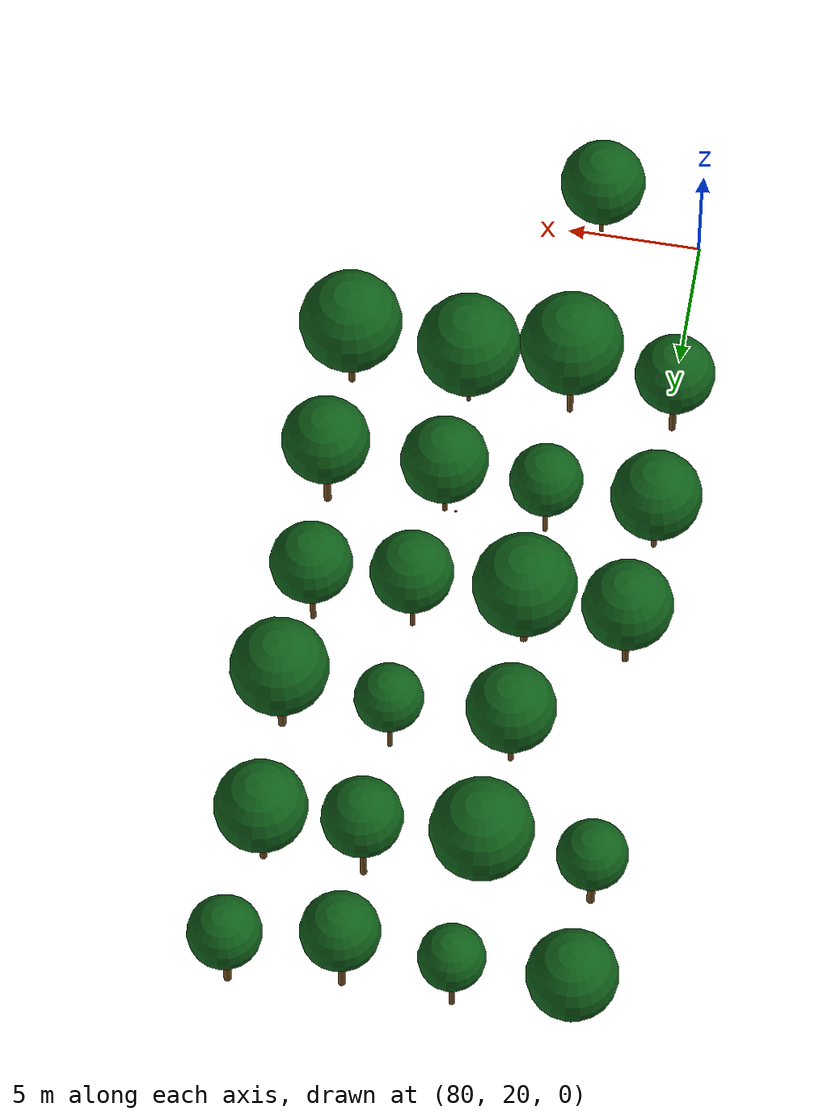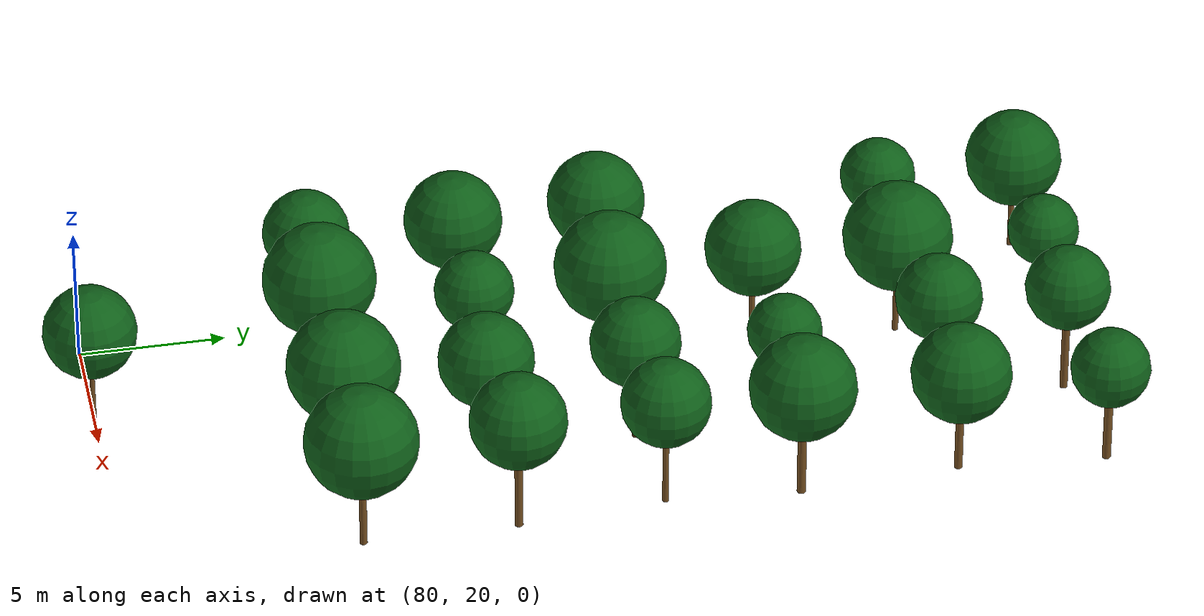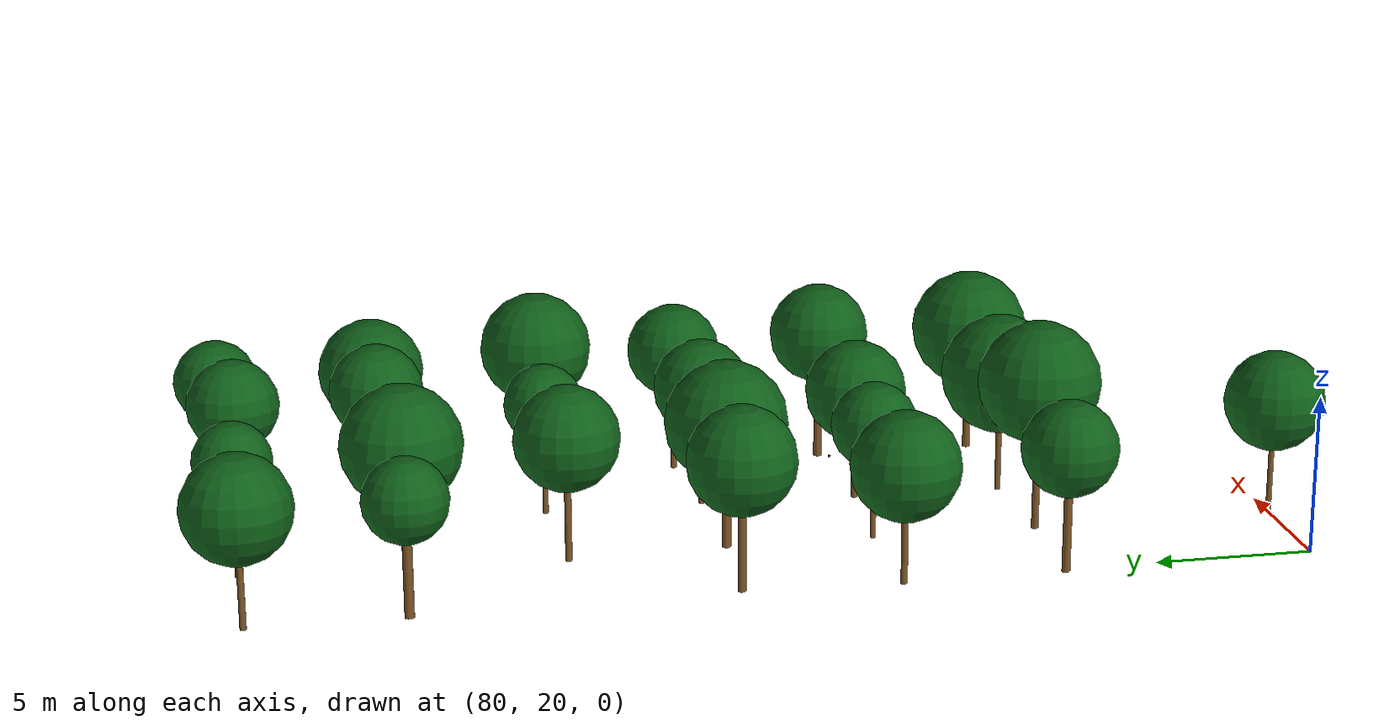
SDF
<sdf version="1.9">
 <world name="cheongsong_orchard">
  <model name="apple_tree_1463">
   <static>true</static>
   <pose>83.77 20.00 0 0 0 0</pose>
   <link name="link">
    <collision name="trunk_col">
     <pose>0 0 1.07 0 0 0</pose>
     <geometry><cylinder><radius>0.083</radius><length>2.14</length></cylinder></geometry>
    </collision>
    <visual name="trunk_vis">
     <pose>0 0 1.07 0 0 0</pose>
     <geometry><cylinder><radius>0.083</radius><length>2.14</length></cylinder></geometry>
     <material><ambient>0.35 0.22 0.08 1</ambient><diffuse>0.45 0.30 0.12 1</diffuse></material>
    </visual>
    <collision name="canopy_col">
     <pose>0 0 3.74 0 0 0</pose>
     <geometry><sphere><radius>1.60</radius></sphere></geometry>
    </collision>
    <visual name="canopy_vis">
     <pose>0 0 3.74 0 0 0</pose>
     <geometry><sphere><radius>1.60</radius></sphere></geometry>
     <material><ambient>0.04 0.28 0.06 1</ambient><diffuse>0.06 0.38 0.10 1</diffuse></material>
    </visual>
   </link>
  </model>
  <model name="apple_tree_1513">
   <static>true</static>
   <pose>79.83 27.93 0 0 0 0</pose>
   <link name="link">
    <collision name="trunk_col">
     <pose>0 0 1.22 0 0 0</pose>
     <geometry><cylinder><radius>0.128</radius><length>2.44</length></cylinder></geometry>
    </collision>
    <visual name="trunk_vis">
     <pose>0 0 1.22 0 0 0</pose>
     <geometry><cylinder><radius>0.128</radius><length>2.44</length></cylinder></geometry>
     <material><ambient>0.35 0.22 0.08 1</ambient><diffuse>0.45 0.30 0.12 1</diffuse></material>
    </visual>
    <collision name="canopy_col">
     <pose>0 0 3.93 0 0 0</pose>
     <geometry><sphere><radius>1.49</radius></sphere></geometry>
    </collision>
    <visual name="canopy_vis">
     <pose>0 0 3.93 0 0 0</pose>
     <geometry><sphere><radius>1.49</radius></sphere></geometry>
     <material><ambient>0.04 0.28 0.06 1</ambient><diffuse>0.06 0.38 0.10 1</diffuse></material>
    </visual>
   </link>
  </model>
  <model name="apple_tree_1514">
   <static>true</static>
   <pose>83.72 27.79 0 0 0 0</pose>
   <link name="link">
    <collision name="trunk_col">
     <pose>0 0 1.44 0 0 0</pose>
     <geometry><cylinder><radius>0.112</radius><length>2.89</length></cylinder></geometry>
    </collision>
    <visual name="trunk_vis">
     <pose>0 0 1.44 0 0 0</pose>
     <geometry><cylinder><radius>0.112</radius><length>2.89</length></cylinder></geometry>
     <material><ambient>0.35 0.22 0.08 1</ambient><diffuse>0.45 0.30 0.12 1</diffuse></material>
    </visual>
    <collision name="canopy_col">
     <pose>0 0 4.82 0 0 0</pose>
     <geometry><sphere><radius>1.93</radius></sphere></geometry>
    </collision>
    <visual name="canopy_vis">
     <pose>0 0 4.82 0 0 0</pose>
     <geometry><sphere><radius>1.93</radius></sphere></geometry>
     <material><ambient>0.04 0.28 0.06 1</ambient><diffuse>0.06 0.38 0.10 1</diffuse></material>
    </visual>
   </link>
  </model>
  <model name="apple_tree_1515">
   <static>true</static>
   <pose>87.53 27.97 0 0 0 0</pose>
   <link name="link">
    <collision name="trunk_col">
     <pose>0 0 1.02 0 0 0</pose>
     <geometry><cylinder><radius>0.090</radius><length>2.04</length></cylinder></geometry>
    </collision>
    <visual name="trunk_vis">
     <pose>0 0 1.02 0 0 0</pose>
     <geometry><cylinder><radius>0.090</radius><length>2.04</length></cylinder></geometry>
     <material><ambient>0.35 0.22 0.08 1</ambient><diffuse>0.45 0.30 0.12 1</diffuse></material>
    </visual>
    <collision name="canopy_col">
     <pose>0 0 3.96 0 0 0</pose>
     <geometry><sphere><radius>1.93</radius></sphere></geometry>
    </collision>
    <visual name="canopy_vis">
     <pose>0 0 3.96 0 0 0</pose>
     <geometry><sphere><radius>1.93</radius></sphere></geometry>
     <material><ambient>0.04 0.28 0.06 1</ambient><diffuse>0.06 0.38 0.10 1</diffuse></material>
    </visual>
   </link>
  </model>
  <model name="apple_tree_1516">
   <static>true</static>
   <pose>91.98 27.86 0 0 0 0</pose>
   <link name="link">
    <collision name="trunk_col">
     <pose>0 0 1.16 0 0 0</pose>
     <geometry><cylinder><radius>0.123</radius><length>2.31</length></cylinder></geometry>
    </collision>
    <visual name="trunk_vis">
     <pose>0 0 1.16 0 0 0</pose>
     <geometry><cylinder><radius>0.123</radius><length>2.31</length></cylinder></geometry>
     <material><ambient>0.35 0.22 0.08 1</ambient><diffuse>0.45 0.30 0.12 1</diffuse></material>
    </visual>
    <collision name="canopy_col">
     <pose>0 0 4.23 0 0 0</pose>
     <geometry><sphere><radius>1.92</radius></sphere></geometry>
    </collision>
    <visual name="canopy_vis">
     <pose>0 0 4.23 0 0 0</pose>
     <geometry><sphere><radius>1.92</radius></sphere></geometry>
     <material><ambient>0.04 0.28 0.06 1</ambient><diffuse>0.06 0.38 0.10 1</diffuse></material>
    </visual>
   </link>
  </model>
  <model name="apple_tree_1568">
   <static>true</static>
   <pose>79.74 33.01 0 0 0 0</pose>
   <link name="link">
    <collision name="trunk_col">
     <pose>0 0 1.02 0 0 0</pose>
     <geometry><cylinder><radius>0.100</radius><length>2.03</length></cylinder></geometry>
    </collision>
    <visual name="trunk_vis">
     <pose>0 0 1.02 0 0 0</pose>
     <geometry><cylinder><radius>0.100</radius><length>2.03</length></cylinder></geometry>
     <material><ambient>0.35 0.22 0.08 1</ambient><diffuse>0.45 0.30 0.12 1</diffuse></material>
    </visual>
    <collision name="canopy_col">
     <pose>0 0 3.72 0 0 0</pose>
     <geometry><sphere><radius>1.69</radius></sphere></geometry>
    </collision>
    <visual name="canopy_vis">
     <pose>0 0 3.72 0 0 0</pose>
     <geometry><sphere><radius>1.69</radius></sphere></geometry>
     <material><ambient>0.04 0.28 0.06 1</ambient><diffuse>0.06 0.38 0.10 1</diffuse></material>
    </visual>
   </link>
  </model>
  <model name="apple_tree_1569">
   <static>true</static>
   <pose>83.81 33.03 0 0 0 0</pose>
   <link name="link">
    <collision name="trunk_col">
     <pose>0 0 1.16 0 0 0</pose>
     <geometry><cylinder><radius>0.083</radius><length>2.33</length></cylinder></geometry>
    </collision>
    <visual name="trunk_vis">
     <pose>0 0 1.16 0 0 0</pose>
     <geometry><cylinder><radius>0.083</radius><length>2.33</length></cylinder></geometry>
     <material><ambient>0.35 0.22 0.08 1</ambient><diffuse>0.45 0.30 0.12 1</diffuse></material>
    </visual>
    <collision name="canopy_col">
     <pose>0 0 3.69 0 0 0</pose>
     <geometry><sphere><radius>1.36</radius></sphere></geometry>
    </collision>
    <visual name="canopy_vis">
     <pose>0 0 3.69 0 0 0</pose>
     <geometry><sphere><radius>1.36</radius></sphere></geometry>
     <material><ambient>0.04 0.28 0.06 1</ambient><diffuse>0.06 0.38 0.10 1</diffuse></material>
    </visual>
   </link>
  </model>
  <model name="apple_tree_1570">
   <static>true</static>
   <pose>87.62 32.77 0 0 0 0</pose>
   <link name="link">
    <collision name="trunk_col">
     <pose>0 0 1.00 0 0 0</pose>
     <geometry><cylinder><radius>0.101</radius><length>2.00</length></cylinder></geometry>
    </collision>
    <visual name="trunk_vis">
     <pose>0 0 1.00 0 0 0</pose>
     <geometry><cylinder><radius>0.101</radius><length>2.00</length></cylinder></geometry>
     <material><ambient>0.35 0.22 0.08 1</ambient><diffuse>0.45 0.30 0.12 1</diffuse></material>
    </visual>
    <collision name="canopy_col">
     <pose>0 0 3.63 0 0 0</pose>
     <geometry><sphere><radius>1.63</radius></sphere></geometry>
    </collision>
    <visual name="canopy_vis">
     <pose>0 0 3.63 0 0 0</pose>
     <geometry><sphere><radius>1.63</radius></sphere></geometry>
     <material><ambient>0.04 0.28 0.06 1</ambient><diffuse>0.06 0.38 0.10 1</diffuse></material>
    </visual>
   </link>
  </model>
  <model name="apple_tree_1571">
   <static>true</static>
   <pose>91.98 33.07 0 0 0 0</pose>
   <link name="link">
    <collision name="trunk_col">
     <pose>0 0 1.34 0 0 0</pose>
     <geometry><cylinder><radius>0.137</radius><length>2.68</length></cylinder></geometry>
    </collision>
    <visual name="trunk_vis">
     <pose>0 0 1.34 0 0 0</pose>
     <geometry><cylinder><radius>0.137</radius><length>2.68</length></cylinder></geometry>
     <material><ambient>0.35 0.22 0.08 1</ambient><diffuse>0.45 0.30 0.12 1</diffuse></material>
    </visual>
    <collision name="canopy_col">
     <pose>0 0 4.33 0 0 0</pose>
     <geometry><sphere><radius>1.64</radius></sphere></geometry>
    </collision>
    <visual name="canopy_vis">
     <pose>0 0 4.33 0 0 0</pose>
     <geometry><sphere><radius>1.64</radius></sphere></geometry>
     <material><ambient>0.04 0.28 0.06 1</ambient><diffuse>0.06 0.38 0.10 1</diffuse></material>
    </visual>
   </link>
  </model>
  <model name="apple_tree_1624">
   <static>true</static>
   <pose>80.04 37.91 0 0 0 0</pose>
   <link name="link">
    <collision name="trunk_col">
     <pose>0 0 1.21 0 0 0</pose>
     <geometry><cylinder><radius>0.124</radius><length>2.43</length></cylinder></geometry>
    </collision>
    <visual name="trunk_vis">
     <pose>0 0 1.21 0 0 0</pose>
     <geometry><cylinder><radius>0.124</radius><length>2.43</length></cylinder></geometry>
     <material><ambient>0.35 0.22 0.08 1</ambient><diffuse>0.45 0.30 0.12 1</diffuse></material>
    </visual>
    <collision name="canopy_col">
     <pose>0 0 4.11 0 0 0</pose>
     <geometry><sphere><radius>1.68</radius></sphere></geometry>
    </collision>
    <visual name="canopy_vis">
     <pose>0 0 4.11 0 0 0</pose>
     <geometry><sphere><radius>1.68</radius></sphere></geometry>
     <material><ambient>0.04 0.28 0.06 1</ambient><diffuse>0.06 0.38 0.10 1</diffuse></material>
    </visual>
   </link>
  </model>
  <model name="apple_tree_1625">
   <static>true</static>
   <pose>83.84 37.69 0 0 0 0</pose>
   <link name="link">
    <collision name="trunk_col">
     <pose>0 0 1.08 0 0 0</pose>
     <geometry><cylinder><radius>0.147</radius><length>2.16</length></cylinder></geometry>
    </collision>
    <visual name="trunk_vis">
     <pose>0 0 1.08 0 0 0</pose>
     <geometry><cylinder><radius>0.147</radius><length>2.16</length></cylinder></geometry>
     <material><ambient>0.35 0.22 0.08 1</ambient><diffuse>0.45 0.30 0.12 1</diffuse></material>
    </visual>
    <collision name="canopy_col">
     <pose>0 0 4.08 0 0 0</pose>
     <geometry><sphere><radius>1.92</radius></sphere></geometry>
    </collision>
    <visual name="canopy_vis">
     <pose>0 0 4.08 0 0 0</pose>
     <geometry><sphere><radius>1.92</radius></sphere></geometry>
     <material><ambient>0.04 0.28 0.06 1</ambient><diffuse>0.06 0.38 0.10 1</diffuse></material>
    </visual>
   </link>
  </model>
  <model name="apple_tree_1626">
   <static>true</static>
   <pose>87.97 37.76 0 0 0 0</pose>
   <link name="link">
    <collision name="trunk_col">
     <pose>0 0 1.19 0 0 0</pose>
     <geometry><cylinder><radius>0.097</radius><length>2.39</length></cylinder></geometry>
    </collision>
    <visual name="trunk_vis">
     <pose>0 0 1.19 0 0 0</pose>
     <geometry><cylinder><radius>0.097</radius><length>2.39</length></cylinder></geometry>
     <material><ambient>0.35 0.22 0.08 1</ambient><diffuse>0.45 0.30 0.12 1</diffuse></material>
    </visual>
    <collision name="canopy_col">
     <pose>0 0 3.93 0 0 0</pose>
     <geometry><sphere><radius>1.54</radius></sphere></geometry>
    </collision>
    <visual name="canopy_vis">
     <pose>0 0 3.93 0 0 0</pose>
     <geometry><sphere><radius>1.54</radius></sphere></geometry>
     <material><ambient>0.04 0.28 0.06 1</ambient><diffuse>0.06 0.38 0.10 1</diffuse></material>
    </visual>
   </link>
  </model>
  <model name="apple_tree_1627">
   <static>true</static>
   <pose>91.62 38.08 0 0 0 0</pose>
   <link name="link">
    <collision name="trunk_col">
     <pose>0 0 1.30 0 0 0</pose>
     <geometry><cylinder><radius>0.104</radius><length>2.59</length></cylinder></geometry>
    </collision>
    <visual name="trunk_vis">
     <pose>0 0 1.30 0 0 0</pose>
     <geometry><cylinder><radius>0.104</radius><length>2.59</length></cylinder></geometry>
     <material><ambient>0.35 0.22 0.08 1</ambient><diffuse>0.45 0.30 0.12 1</diffuse></material>
    </visual>
    <collision name="canopy_col">
     <pose>0 0 4.11 0 0 0</pose>
     <geometry><sphere><radius>1.52</radius></sphere></geometry>
    </collision>
    <visual name="canopy_vis">
     <pose>0 0 4.11 0 0 0</pose>
     <geometry><sphere><radius>1.52</radius></sphere></geometry>
     <material><ambient>0.04 0.28 0.06 1</ambient><diffuse>0.06 0.38 0.10 1</diffuse></material>
    </visual>
   </link>
  </model>
  <model name="apple_tree_1682">
   <static>true</static>
   <pose>83.51 42.67 0 0 0 0</pose>
   <link name="link">
    <collision name="trunk_col">
     <pose>0 0 1.15 0 0 0</pose>
     <geometry><cylinder><radius>0.104</radius><length>2.29</length></cylinder></geometry>
    </collision>
    <visual name="trunk_vis">
     <pose>0 0 1.15 0 0 0</pose>
     <geometry><cylinder><radius>0.104</radius><length>2.29</length></cylinder></geometry>
     <material><ambient>0.35 0.22 0.08 1</ambient><diffuse>0.45 0.30 0.12 1</diffuse></material>
    </visual>
    <collision name="canopy_col">
     <pose>0 0 3.95 0 0 0</pose>
     <geometry><sphere><radius>1.65</radius></sphere></geometry>
    </collision>
    <visual name="canopy_vis">
     <pose>0 0 3.95 0 0 0</pose>
     <geometry><sphere><radius>1.65</radius></sphere></geometry>
     <material><ambient>0.04 0.28 0.06 1</ambient><diffuse>0.06 0.38 0.10 1</diffuse></material>
    </visual>
   </link>
  </model>
  <model name="apple_tree_1683">
   <static>true</static>
   <pose>87.93 42.85 0 0 0 0</pose>
   <link name="link">
    <collision name="trunk_col">
     <pose>0 0 1.20 0 0 0</pose>
     <geometry><cylinder><radius>0.088</radius><length>2.40</length></cylinder></geometry>
    </collision>
    <visual name="trunk_vis">
     <pose>0 0 1.20 0 0 0</pose>
     <geometry><cylinder><radius>0.088</radius><length>2.40</length></cylinder></geometry>
     <material><ambient>0.35 0.22 0.08 1</ambient><diffuse>0.45 0.30 0.12 1</diffuse></material>
    </visual>
    <collision name="canopy_col">
     <pose>0 0 3.67 0 0 0</pose>
     <geometry><sphere><radius>1.27</radius></sphere></geometry>
    </collision>
    <visual name="canopy_vis">
     <pose>0 0 3.67 0 0 0</pose>
     <geometry><sphere><radius>1.27</radius></sphere></geometry>
     <material><ambient>0.04 0.28 0.06 1</ambient><diffuse>0.06 0.38 0.10 1</diffuse></material>
    </visual>
   </link>
  </model>
  <model name="apple_tree_1684">
   <static>true</static>
   <pose>91.95 42.62 0 0 0 0</pose>
   <link name="link">
    <collision name="trunk_col">
     <pose>0 0 1.26 0 0 0</pose>
     <geometry><cylinder><radius>0.148</radius><length>2.53</length></cylinder></geometry>
    </collision>
    <visual name="trunk_vis">
     <pose>0 0 1.26 0 0 0</pose>
     <geometry><cylinder><radius>0.148</radius><length>2.53</length></cylinder></geometry>
     <material><ambient>0.35 0.22 0.08 1</ambient><diffuse>0.45 0.30 0.12 1</diffuse></material>
    </visual>
    <collision name="canopy_col">
     <pose>0 0 4.34 0 0 0</pose>
     <geometry><sphere><radius>1.81</radius></sphere></geometry>
    </collision>
    <visual name="canopy_vis">
     <pose>0 0 4.34 0 0 0</pose>
     <geometry><sphere><radius>1.81</radius></sphere></geometry>
     <material><ambient>0.04 0.28 0.06 1</ambient><diffuse>0.06 0.38 0.10 1</diffuse></material>
    </visual>
   </link>
  </model>
  <model name="apple_tree_1737">
   <static>true</static>
   <pose>79.74 47.83 0 0 0 0</pose>
   <link name="link">
    <collision name="trunk_col">
     <pose>0 0 1.16 0 0 0</pose>
     <geometry><cylinder><radius>0.146</radius><length>2.32</length></cylinder></geometry>
    </collision>
    <visual name="trunk_vis">
     <pose>0 0 1.16 0 0 0</pose>
     <geometry><cylinder><radius>0.146</radius><length>2.32</length></cylinder></geometry>
     <material><ambient>0.35 0.22 0.08 1</ambient><diffuse>0.45 0.30 0.12 1</diffuse></material>
    </visual>
    <collision name="canopy_col">
     <pose>0 0 3.62 0 0 0</pose>
     <geometry><sphere><radius>1.30</radius></sphere></geometry>
    </collision>
    <visual name="canopy_vis">
     <pose>0 0 3.62 0 0 0</pose>
     <geometry><sphere><radius>1.30</radius></sphere></geometry>
     <material><ambient>0.04 0.28 0.06 1</ambient><diffuse>0.06 0.38 0.10 1</diffuse></material>
    </visual>
   </link>
  </model>
  <model name="apple_tree_1738">
   <static>true</static>
   <pose>83.75 47.64 0 0 0 0</pose>
   <link name="link">
    <collision name="trunk_col">
     <pose>0 0 1.03 0 0 0</pose>
     <geometry><cylinder><radius>0.100</radius><length>2.06</length></cylinder></geometry>
    </collision>
    <visual name="trunk_vis">
     <pose>0 0 1.03 0 0 0</pose>
     <geometry><cylinder><radius>0.100</radius><length>2.06</length></cylinder></geometry>
     <material><ambient>0.35 0.22 0.08 1</ambient><diffuse>0.45 0.30 0.12 1</diffuse></material>
    </visual>
    <collision name="canopy_col">
     <pose>0 0 3.95 0 0 0</pose>
     <geometry><sphere><radius>1.89</radius></sphere></geometry>
    </collision>
    <visual name="canopy_vis">
     <pose>0 0 3.95 0 0 0</pose>
     <geometry><sphere><radius>1.89</radius></sphere></geometry>
     <material><ambient>0.04 0.28 0.06 1</ambient><diffuse>0.06 0.38 0.10 1</diffuse></material>
    </visual>
   </link>
  </model>
  <model name="apple_tree_1739">
   <static>true</static>
   <pose>87.97 48.10 0 0 0 0</pose>
   <link name="link">
    <collision name="trunk_col">
     <pose>0 0 1.45 0 0 0</pose>
     <geometry><cylinder><radius>0.119</radius><length>2.90</length></cylinder></geometry>
    </collision>
    <visual name="trunk_vis">
     <pose>0 0 1.45 0 0 0</pose>
     <geometry><cylinder><radius>0.119</radius><length>2.90</length></cylinder></geometry>
     <material><ambient>0.35 0.22 0.08 1</ambient><diffuse>0.45 0.30 0.12 1</diffuse></material>
    </visual>
    <collision name="canopy_col">
     <pose>0 0 4.39 0 0 0</pose>
     <geometry><sphere><radius>1.48</radius></sphere></geometry>
    </collision>
    <visual name="canopy_vis">
     <pose>0 0 4.39 0 0 0</pose>
     <geometry><sphere><radius>1.48</radius></sphere></geometry>
     <material><ambient>0.04 0.28 0.06 1</ambient><diffuse>0.06 0.38 0.10 1</diffuse></material>
    </visual>
   </link>
  </model>
  <model name="apple_tree_1740">
   <static>true</static>
   <pose>91.64 48.05 0 0 0 0</pose>
   <link name="link">
    <collision name="trunk_col">
     <pose>0 0 1.11 0 0 0</pose>
     <geometry><cylinder><radius>0.134</radius><length>2.22</length></cylinder></geometry>
    </collision>
    <visual name="trunk_vis">
     <pose>0 0 1.11 0 0 0</pose>
     <geometry><cylinder><radius>0.134</radius><length>2.22</length></cylinder></geometry>
     <material><ambient>0.35 0.22 0.08 1</ambient><diffuse>0.45 0.30 0.12 1</diffuse></material>
    </visual>
    <collision name="canopy_col">
     <pose>0 0 3.93 0 0 0</pose>
     <geometry><sphere><radius>1.70</radius></sphere></geometry>
    </collision>
    <visual name="canopy_vis">
     <pose>0 0 3.93 0 0 0</pose>
     <geometry><sphere><radius>1.70</radius></sphere></geometry>
     <material><ambient>0.04 0.28 0.06 1</ambient><diffuse>0.06 0.38 0.10 1</diffuse></material>
    </visual>
   </link>
  </model>
  <model name="apple_tree_1793">
   <static>true</static>
   <pose>79.69 52.63 0 0 0 0</pose>
   <link name="link">
    <collision name="trunk_col">
     <pose>0 0 1.02 0 0 0</pose>
     <geometry><cylinder><radius>0.097</radius><length>2.04</length></cylinder></geometry>
    </collision>
    <visual name="trunk_vis">
     <pose>0 0 1.02 0 0 0</pose>
     <geometry><cylinder><radius>0.097</radius><length>2.04</length></cylinder></geometry>
     <material><ambient>0.35 0.22 0.08 1</ambient><diffuse>0.45 0.30 0.12 1</diffuse></material>
    </visual>
    <collision name="canopy_col">
     <pose>0 0 3.69 0 0 0</pose>
     <geometry><sphere><radius>1.66</radius></sphere></geometry>
    </collision>
    <visual name="canopy_vis">
     <pose>0 0 3.69 0 0 0</pose>
     <geometry><sphere><radius>1.66</radius></sphere></geometry>
     <material><ambient>0.04 0.28 0.06 1</ambient><diffuse>0.06 0.38 0.10 1</diffuse></material>
    </visual>
   </link>
  </model>
  <model name="apple_tree_1794">
   <static>true</static>
   <pose>83.97 52.67 0 0 0 0</pose>
   <link name="link">
    <collision name="trunk_col">
     <pose>0 0 1.23 0 0 0</pose>
     <geometry><cylinder><radius>0.100</radius><length>2.47</length></cylinder></geometry>
    </collision>
    <visual name="trunk_vis">
     <pose>0 0 1.23 0 0 0</pose>
     <geometry><cylinder><radius>0.100</radius><length>2.47</length></cylinder></geometry>
     <material><ambient>0.35 0.22 0.08 1</ambient><diffuse>0.45 0.30 0.12 1</diffuse></material>
    </visual>
    <collision name="canopy_col">
     <pose>0 0 3.69 0 0 0</pose>
     <geometry><sphere><radius>1.22</radius></sphere></geometry>
    </collision>
    <visual name="canopy_vis">
     <pose>0 0 3.69 0 0 0</pose>
     <geometry><sphere><radius>1.22</radius></sphere></geometry>
     <material><ambient>0.04 0.28 0.06 1</ambient><diffuse>0.06 0.38 0.10 1</diffuse></material>
    </visual>
   </link>
  </model>
  <model name="apple_tree_1795">
   <static>true</static>
   <pose>87.97 52.55 0 0 0 0</pose>
   <link name="link">
    <collision name="trunk_col">
     <pose>0 0 1.36 0 0 0</pose>
     <geometry><cylinder><radius>0.130</radius><length>2.72</length></cylinder></geometry>
    </collision>
    <visual name="trunk_vis">
     <pose>0 0 1.36 0 0 0</pose>
     <geometry><cylinder><radius>0.130</radius><length>2.72</length></cylinder></geometry>
     <material><ambient>0.35 0.22 0.08 1</ambient><diffuse>0.45 0.30 0.12 1</diffuse></material>
    </visual>
    <collision name="canopy_col">
     <pose>0 0 4.17 0 0 0</pose>
     <geometry><sphere><radius>1.45</radius></sphere></geometry>
    </collision>
    <visual name="canopy_vis">
     <pose>0 0 4.17 0 0 0</pose>
     <geometry><sphere><radius>1.45</radius></sphere></geometry>
     <material><ambient>0.04 0.28 0.06 1</ambient><diffuse>0.06 0.38 0.10 1</diffuse></material>
    </visual>
   </link>
  </model>
  <model name="apple_tree_1796">
   <static>true</static>
   <pose>92.02 53.05 0 0 0 0</pose>
   <link name="link">
    <collision name="trunk_col">
     <pose>0 0 1.19 0 0 0</pose>
     <geometry><cylinder><radius>0.142</radius><length>2.38</length></cylinder></geometry>
    </collision>
    <visual name="trunk_vis">
     <pose>0 0 1.19 0 0 0</pose>
     <geometry><cylinder><radius>0.142</radius><length>2.38</length></cylinder></geometry>
     <material><ambient>0.35 0.22 0.08 1</ambient><diffuse>0.45 0.30 0.12 1</diffuse></material>
    </visual>
    <collision name="canopy_col">
     <pose>0 0 3.73 0 0 0</pose>
     <geometry><sphere><radius>1.35</radius></sphere></geometry>
    </collision>
    <visual name="canopy_vis">
     <pose>0 0 3.73 0 0 0</pose>
     <geometry><sphere><radius>1.35</radius></sphere></geometry>
     <material><ambient>0.04 0.28 0.06 1</ambient><diffuse>0.06 0.38 0.10 1</diffuse></material>
    </visual>
   </link>
  </model>
  <model name="apple_1570_0">
   <static>true</static>
   <pose>88.74 32.30 2.21 0 0 0</pose>
   <link name="link">
    <visual name="visual">
     <geometry><sphere><radius>0.04</radius></sphere></geometry>
     <material><ambient>0.7 0.05 0.02 1</ambient><diffuse>0.9 0.10 0.05 1</diffuse></material>
    </visual>
   </link>
  </model>
  <model name="apple_1570_1">
   <static>true</static>
   <pose>87.04 33.74 1.65 0 0 0</pose>
   <link name="link">
    <visual name="visual">
     <geometry><sphere><radius>0.04</radius></sphere></geometry>
     <material><ambient>0.7 0.05 0.02 1</ambient><diffuse>0.9 0.10 0.05 1</diffuse></material>
    </visual>
   </link>
  </model>
  <model name="apple_1570_2">
   <static>true</static>
   <pose>87.63 32.25 1.38 0 0 0</pose>
   <link name="link">
    <visual name="visual">
     <geometry><sphere><radius>0.04</radius></sphere></geometry>
     <material><ambient>0.7 0.05 0.02 1</ambient><diffuse>0.9 0.10 0.05 1</diffuse></material>
    </visual>
   </link>
  </model>
  <model name="apple_1570_3">
   <static>true</static>
   <pose>87.48 31.85 2.34 0 0 0</pose>
   <link name="link">
    <visual name="visual">
     <geometry><sphere><radius>0.04</radius></sphere></geometry>
     <material><ambient>0.7 0.05 0.02 1</ambient><diffuse>0.9 0.10 0.05 1</diffuse></material>
    </visual>
   </link>
  </model>
  <model name="apple_1740_1">
   <static>true</static>
   <pose>91.28 48.84 2.01 0 0 0</pose>
   <link name="link">
    <visual name="visual">
     <geometry><sphere><radius>0.04</radius></sphere></geometry>
     <material><ambient>0.7 0.05 0.02 1</ambient><diffuse>0.9 0.10 0.05 1</diffuse></material>
    </visual>
   </link>
  </model>
  <model name="apple_1740_3">
   <static>true</static>
   <pose>92.00 47.36 2.64 0 0 0</pose>
   <link name="link">
    <visual name="visual">
     <geometry><sphere><radius>0.04</radius></sphere></geometry>
     <material><ambient>0.7 0.05 0.02 1</ambient><diffuse>0.9 0.10 0.05 1</diffuse></material>
    </visual>
   </link>
  </model>
  <model name="apple_1740_4">
   <static>true</static>
   <pose>91.91 48.60 2.18 0 0 0</pose>
   <link name="link">
    <visual name="visual">
     <geometry><sphere><radius>0.04</radius></sphere></geometry>
     <material><ambient>0.7 0.05 0.02 1</ambient><diffuse>0.9 0.10 0.05 1</diffuse></material>
    </visual>
   </link>
  </model>
 </world>
</sdf>
